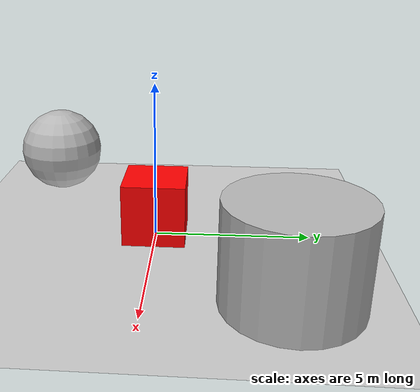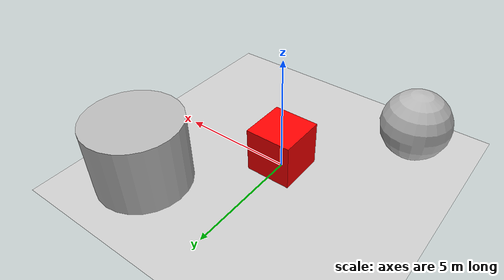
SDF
<?xml version="1.0" ?>
<sdf version="1.7">
  <world name="default">
    <!-- Ray intersections need the bullet collision detector of DART -->
    <physics name="1ms" type="ignored">
      <max_step_size>0.001</max_step_size>
      <real_time_factor>1.0</real_time_factor>
      <dart>
        <collision_detector>bullet</collision_detector>
      </dart>
    </physics>

    <!-- When a world declares plugins the default systems are not loaded, so they are listed here.
         The physics system is the one that casts the rays of the plugin. -->
    <plugin filename="gz-sim-physics-system" name="gz::sim::systems::Physics"/>
    <plugin filename="gz-sim-user-commands-system" name="gz::sim::systems::UserCommands"/>
    <plugin filename="gz-sim-scene-broadcaster-system" name="gz::sim::systems::SceneBroadcaster"/>

    <light type="directional" name="sun">
      <cast_shadows>true</cast_shadows>
      <pose>0 0 10 0 0 0</pose>
      <diffuse>0.8 0.8 0.8 1</diffuse>
      <specular>0.2 0.2 0.2 1</specular>
      <direction>-0.5 0.1 -0.9</direction>
    </light>

    <plugin
      filename="ray_tracing_plugin"
      name="ray_tracing_plugin::PointCloudGenerator">
      <center_x>0.0</center_x>
      <center_y>0.0</center_y>
      <center_z>0.0</center_z>
      <min_scan_x>-10.0</min_scan_x>
      <min_scan_y>-10.0</min_scan_y>
      <min_scan_z>-1.0</min_scan_z>
      <max_scan_x>10.0</max_scan_x>
      <max_scan_y>10.0</max_scan_y>
      <max_scan_z>10.0</max_scan_z>
      <resolution>0.25</resolution>
      <step>3.0</step>
    </plugin>

    <!-- Caja -->
    <model name="caja">
      <static>true</static>
      <pose>0 0 1 0 0 0</pose>
      <link name="link">
        <visual name="visual">
          <geometry>
            <box>
              <size>2 2 2</size>
            </box>
          </geometry>
          <material>
            <ambient>1 0 0 1</ambient>
          </material>
        </visual>
        <collision name="collision">
          <geometry>
            <box>
              <size>2 2 2</size>
            </box>
          </geometry>
        </collision>
      </link>
    </model>

    <!-- Cilindro -->
    <model name="cilindro">
      <static>true</static>
      <pose>4 4 1.5 0 0 0</pose>
      <link name="link">
        <visual name="visual">
          <geometry>
            <cylinder>
              <radius>2</radius>
              <length>3</length>
            </cylinder>
          </geometry>
        </visual>
        <collision name="collision">
          <geometry>
            <cylinder>
              <radius>2</radius>
              <length>3</length>
            </cylinder>
          </geometry>
        </collision>
      </link>
    </model>

    <!-- Esfera -->
    <model name="esfera">
      <static>true</static>
      <pose>-4 -4 1.5 0 0 0</pose>
      <link name="link">
        <visual name="visual">
          <geometry>
            <sphere>
              <radius>1.5</radius>
            </sphere>
          </geometry>
        </visual>
        <collision name="collision">
          <geometry>
            <sphere>
              <radius>1.5</radius>
            </sphere>
          </geometry>
        </collision>
      </link>
    </model>

    <model name="ground_plane">
      <static>true</static>
      <link name="link">
        <collision name="collision">
          <geometry>
            <plane>
              <normal>0 0 1</normal>
              <size>20 20</size>
            </plane>
          </geometry>
        </collision>
        <visual name="visual">
          <geometry>
            <plane>
              <normal>0 0 1</normal>
              <size>20 20</size>
            </plane>
          </geometry>
          <material>
            <ambient>0.8 0.8 0.8 1</ambient>
            <diffuse>0.8 0.8 0.8 1</diffuse>
            <specular>0.8 0.8 0.8 1</specular>
          </material>
        </visual>
      </link>
    </model>

  </world>
</sdf>
